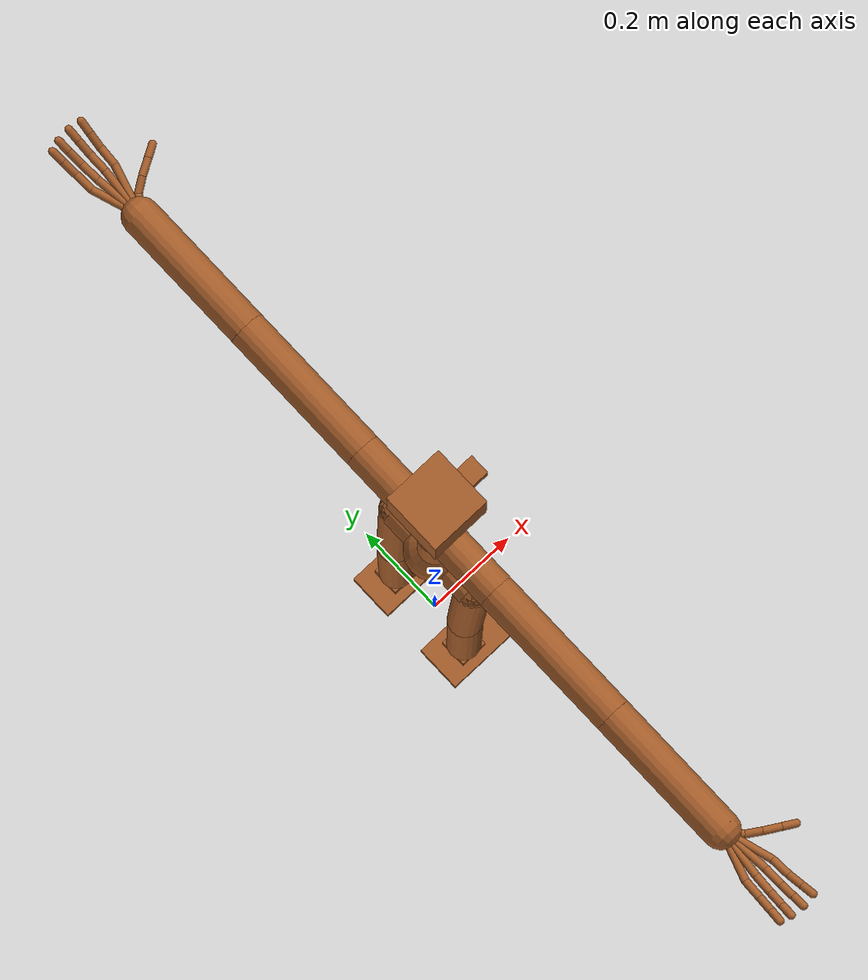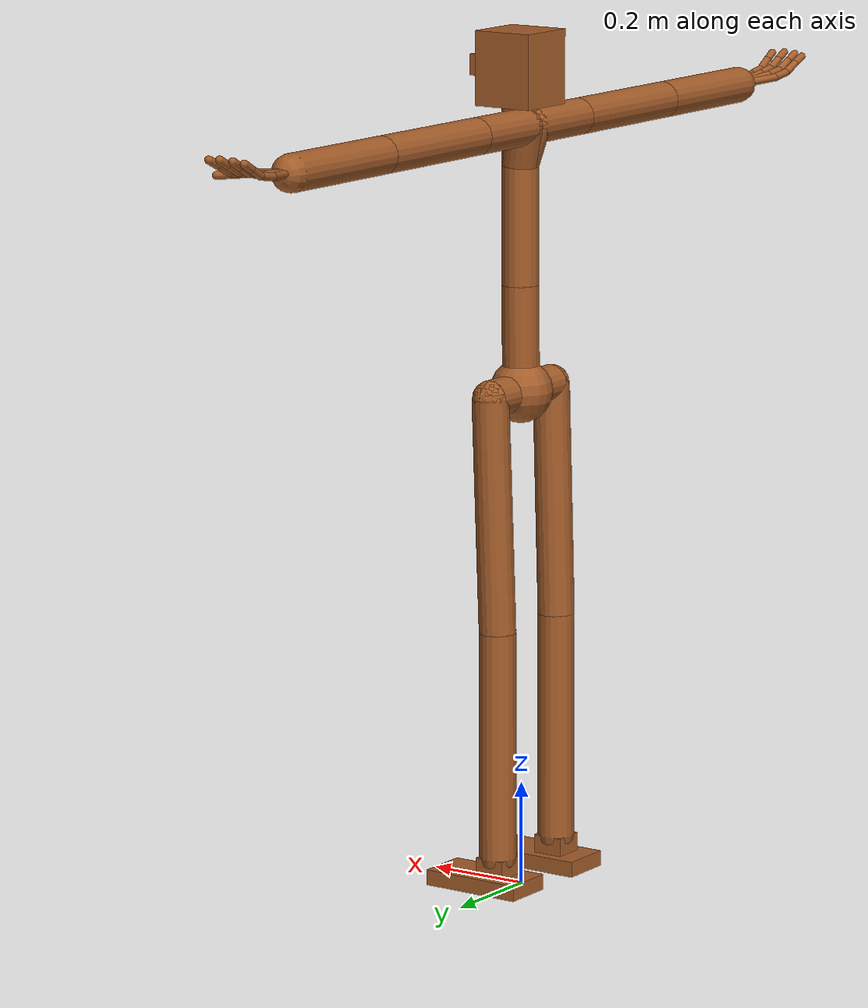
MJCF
<mujoco model="common-rig-h">
    <!--
            Robot Intelligence Lab
            Common Rig (Custom Humanoid) model

            @ Contact us : taemoon-jeong (motor_moon94@korea.ac.kr)
    -->
    <compiler coordinate="local" inertiafromgeom="true" angle="radian"/>

    <default>
        <joint limited="true" damping="1" armature="0"/>
        <geom contype="1" condim="3" margin="0.001" solref=".02 1" solimp=".8 .8 .01" material="matgeom"/>
        <motor ctrlrange="-.4 .4" ctrllimited="true"/>

        <default class="hand">
        	<joint limited="true"/>
            <position ctrllimited="true" kp="1"/>
		</default>
    </default>

    <option timestep="0.005" iterations="50" tolerance="1e-10" solver="Newton" jacobian="dense" cone="pyramidal"/>
    <size nconmax="50" njmax="200" nstack="10000"/>

    <visual>
        <map force="0.1" zfar="30"/>
        <rgba haze="0.15 0.25 0.35 1"/>
        <quality shadowsize="2048"/>
        <global offwidth="800" offheight="800"/>
    </visual>

    <asset>
        <texture name="texgeom" type="cube" builtin="flat" mark="cross" width="127" height="1278"
            rgb1="0.8 0.6 0.4" rgb2="0.8 0.6 0.4" markrgb="1 1 1" random="0.01"/>
        <material name="matgeom" texture="texgeom" texuniform="true" rgba="0.8 0.6 0.4 1.0"/>
    </asset>

    <worldbody>

        <body name="base" pos="0 0 0.960348">
            <freejoint name="base"/>
            <geom name="base" type="sphere" pos="0 0 0" size="0.06"/>
            <body name="torso" pos="0 0 0" euler="0 0 0">
                <geom name="root2spine" type="capsule" fromto="0 0 0 0.00194939 0 0.2017038"  size="0.035" density="2226"/>
                <joint name="root1" type="hinge" pos="0 0 0" axis="1 0 0" range="-0.872222 0.872222" damping="60" stiffness="600" armature="0.02" />
                <joint name="root2" type="hinge" pos="0 0 0" axis="0 1 0" range="-0.523333 2.616667" damping="60" stiffness="600" armature="0.02" />
                <joint name="root3" type="hinge" pos="0 0 0" axis="0 0 1" range="-1.395556 1.395556" damping="60" stiffness="600" armature="0.02" />
                <body name="spine" pos="0.00194939 0 0.2017038" euler="0 0 0">
                    <geom name="spine2neck" type="capsule" fromto="0 0 0 0 0 0.2263381"  size="0.035" density="2226"/>
                    <joint name="spine" type="hinge" pos="0 0 0" axis="0 1 0" range="-0.436111 0.785" damping="60" stiffness="600" armature="0.02" />
                    <joint name="spinex" type="hinge" pos="0 0 0" axis="1 0 0" range="-0.436111 0.785" damping="60" stiffness="600" armature="0.02"/>
                    <joint name="spinez" type="hinge" pos="0 0 0" axis="0 0 1" range="-0.436111 0.785" damping="60" stiffness="600" armature="0.02"/>
                    <body name="neck" pos="0 0 0.2263381" euler="0 0 0">
                        <geom name="neck2rclavicle" type="capsule" fromto="0 0 0 -0.0182683 -0.0119726 0.0730251"  size="0.035"/>
                        <geom name="neck2lclavicle" type="capsule" fromto="0 0 0 -0.0182683 0.0119726 0.0730251"  size="0.035"/>
                        <geom name="neck2head" type="capsule" fromto="0 0 0 0 0 0.1817364"  size="0.035"/>
                        <body name="right_clavicle" pos="-0.0182683 -0.0119726 0.0730251" euler="0 0 0">
                            <geom name="rclavicle2rshoulder" type="capsule" fromto="0 0 0 0 -0.155151 0"  size="0.035"/>
                            <joint name="rc" type="hinge" pos="0 0 0" axis="1 0 0" range="-0.261793 0.261793" damping="60" stiffness="600" armature="0.02"/>
                            <body name="right_shoulder" pos="0 -0.155151 0" euler="0 0 0">
                                <geom name="rshoulder2relbow" type="capsule" fromto="0 0 0 0 -0.291422 0"  size="0.035"/>
                                <joint name="rs1" type="hinge" pos="0 0 0" axis="1 0 0" range="-2.006111 2.006111" stiffness="200" damping="20" armature="0.0068" />
                                <joint name="rs2" type="hinge" pos="0 0 0" axis="0 0 1" range="-1.570796 3.141592" stiffness="200" damping="20" armature="0.0051" />
                                <joint name="rs3" type="hinge" pos="0 0 0" axis="0 1 0" range="-3.141592 3.141592" stiffness="200" damping="20" armature="0.0051"/>
                                <body name="right_elbow" pos="0 -0.291422 0" euler="0 0 0">
                                    <geom name="relbow2rwrist" type="capsule" fromto="0 0 0 0 -0.270311 0"  size="0.035"/>
                                    <joint name="re" type="hinge" pos="0 0 0" axis="0 0 1" range="0.01 2.61666666667" stiffness="150" damping="15" armature="0.0028"/>
                                    <body name="right_wrist" pos="0 -0.270311 0" euler="0 0 0">
                                        <joint name="rw1" type="hinge" pos="0 0 0" axis="0 1 0" range="-1.570796 1.570796" damping="5" stiffness="50" armature="0.02"/>
                                        <joint name="rw2" type="hinge" pos="0 0 0" axis="0 0 1" range="-1.570796 1.570796" damping="5" stiffness="50" armature="0.02"/>
                                        <joint name="rw3" type="hinge" pos="0 0 0" axis="1 0 0" range="-1.570796 1.570796" damping="5" stiffness="50" armature="0.02"/>
                                            <geom name="rwrist2rtbase" type="capsule" fromto="0 0 0 0 -0.00001 0" size="0.0075"/>
                                            <body name="rtbase" pos="0 -0.00001 0" euler="0 0 0">
                                            <joint name="rthumb" type="hinge" pos="0 0 0" axis="0 0 1" range="-0.392699 0.392699" damping="5" stiffness="50" armature="0.02"/>
                                                <geom name="rtbase2rthumb" type="capsule" fromto="0 0 0 0.024048 -0.032330 -0.003781" size="0.0075"/>
                                                <body name="rthumb_l1" pos="0.024048 -0.032330 -0.003781" euler="0 0 0">
                                                    <geom name="rthumb_l12" type="capsule" fromto="0 0 0 0.025917 -0.017108 0.005257" size="0.0075"/>
                                                    <joint name="rthumb_q1" type="hinge" pos="0 0 0" axis="0 1 0" range="0.01 1.570796" damping="5" stiffness="50" armature="0.02"/>
                                                        <body name="rthumb_l2" pos="0.025917 -0.017108 0.005257" euler="0 0 0">
                                                            <geom name="rthumb_l23" type="capsule" fromto="0 0 0 0.029296 -0.017082 -0.002240" size="0.0075"/>
                                                            <joint name="rthumb_q2" type="hinge" pos="0 0 0" axis="0 0 1" range="-3.141592 -0.01" damping="5" stiffness="50" armature="0.02"/>
                                                                <body name="rthumb_l3" pos="0.029296 -0.017082 -0.002240" euler="0 0 0">
                                                                    <geom name="rthumb_l3end" type="capsule" fromto="0 0 0 0.021972 -0.012812 -0.001680" size="0.0075"/>
                                                                    <joint name="rthumb_q3" type="hinge" pos="0 0 0" axis="0 0 1" range="-3.141592 -0.01" damping="5" stiffness="50" armature="0.02"/>
                                                                        <body name="rthumb_end" pos="0.021972 -0.012812 -0.001680" euler="0 0 0"/>
                                                                </body>
                                                        </body>
                                                </body>
                                            </body>
                                            <geom name="rwrist2ribase" type="capsule" fromto="0 0 0 0 -0.00001 0" size="0.0075"/>
                                            <body name="ribase" pos="0 -0.00001 0" euler="0 0 0">
                                            <joint name="rindex" type="hinge" pos="0 0 0" axis="0 0 1" range="-0.392699 0.392699" damping="5" stiffness="50" armature="0.02"/>
                                                <geom name="ribase2rindex" type="capsule" fromto="0 0 0 0.02792 -0.09587 0.009270" size="0.0075"/>
                                                <body name="rindex_l1" pos="0.02792 -0.09587 0.009270" euler="0 0 0">
                                                    <geom name="rindex_l12" type="capsule" fromto="0 0 0 0.001741 -0.038053 0.006304" size="0.0075"/>
                                                    <joint name="rindex_q1" type="hinge" pos="0 0 0" axis="1 0 0" range="0.01 3.141592" damping="5" stiffness="50" armature="0.02"/>
                                                        <body name="rindex_l2" pos="0.001741 -0.038053 0.006304" euler="0 0 0">
                                                            <geom name="rindex_l23" type="capsule" fromto="0 0 0 0.002766 -0.029346 0.015357" size="0.0075"/>
                                                            <joint name="rindex_q2" type="hinge" pos="0 0 0" axis="1 0 0" range="0.01 3.141592" damping="5" stiffness="50" armature="0.02"/>
                                                                <body name="rindex_l3" pos="0.002766 -0.029346 0.015357" euler="0 0 0">
                                                                    <geom name="rindex_l3end" type="capsule" fromto="0 0 0 0.002075 -0.022010 0.011517" size="0.0075"/>
                                                                    <joint name="rindex_q3" type="hinge" pos="0 0 0" axis="1 0 0" range="0.01 3.141592" damping="5" stiffness="50" armature="0.02"/>
                                                                        <body name="rindex_end" pos="0.002075 -0.022010 0.011517" euler="0 0 0"/>
                                                                </body>
                                                        </body>
                                                </body>
                                            </body>
                                            <geom name="rwrist2rmbase" type="capsule" fromto="0 0 0 0 -0.00001 0" size="0.0075"/>
                                            <body name="rmbase" pos="0 -0.00001 0" euler="0 0 0">
                                            <joint name="rmiddle" type="hinge" pos="0 0 0" axis="0 0 1" range="-0.392699 0.392699" damping="5" stiffness="50" armature="0.02"/>
                                                <geom name="rmbase2rmiddle" type="capsule" fromto="0 0 0 0.008417 -0.09906 0.01151" size="0.0075"/>
                                                <body name="rmiddle_l1" pos="0.008417 -0.09906 0.01151" euler="0 0 0">
                                                    <geom name="rmiddle_l12" type="capsule" fromto="0 0 0 -0.000267 -0.038091 0.006303" size="0.0075"/>
                                                    <joint name="rmiddle_q1" type="hinge" pos="0 0 0" axis="1 0 0" range="0.01 3.141592" damping="5" stiffness="50" armature="0.02"/>
                                                        <body name="rmiddle_l2" pos="-0.000267 -0.038091 0.006303" euler="0 0 0">
                                                            <geom name="rmiddle_l23" type="capsule" fromto="0 0 0 0.000396 -0.029433 0.015435" size="0.0075"/>
                                                            <joint name="rmiddle_q2" type="hinge" pos="0 0 0" axis="1 0 0" range="0.01 3.141592" damping="5" stiffness="50" armature="0.02"/>
                                                                <body name="rmiddle_l3" pos="0.000396 -0.029433 0.015435" euler="0 0 0">
                                                                    <geom name="rmiddle_l3end" type="capsule" fromto="0 0 0 0.000297 -0.022074 0.011576" size="0.0075"/>
                                                                    <joint name="rmiddle_q3" type="hinge" pos="0 0 0" axis="1 0 0" range="0.01 3.141592" damping="5" stiffness="50" armature="0.02"/>
                                                                        <body name="rmiddle_end" pos="0.000297 -0.022074 0.011576" euler="0 0 0"/>
                                                                </body>
                                                        </body>
                                                </body>
                                            </body>
                                            <geom name="rwrist2rrbase" type="capsule" fromto="0 0 0 0 -0.00001 0" size="0.0075"/>
                                            <body name="rrbase" pos="0 -0.00001 0" euler="0 0 0">
                                            <joint name="rring" type="hinge" pos="0 0 0" axis="0 0 1" range="-0.392699 0.392699" damping="5" stiffness="50" armature="0.02"/>
                                                <geom name="rmbase2rring" type="capsule" fromto="0 0 0 -0.01175 -0.09670 0.01039" size="0.0075"/>
                                                <body name="rring_l1" pos="-0.01175 -0.09670 0.01039" euler="0 0 0">
                                                    <geom name="rring_l12" type="capsule" fromto="0 0 0 -0.002238 -0.038029 0.006287" size="0.0075"/>
                                                    <joint name="rring_q1" type="hinge" pos="0 0 0" axis="1 0 0" range="0.01 3.141592" damping="5" stiffness="50" armature="0.02"/>
                                                        <body name="rring_l2" pos="-0.002238 -0.038029 0.006287" euler="0 0 0">
                                                            <geom name="rring_l23" type="capsule" fromto="0 0 0 -0.001986 -0.029367 0.015437" size="0.0075"/>
                                                            <joint name="rring_q2" type="hinge" pos="0 0 0" axis="1 0 0" range="0.01 3.141592" damping="5" stiffness="50" armature="0.02"/>
                                                                <body name="rring_l3" pos="-0.001986 -0.029367 0.015437" euler="0 0 0">
                                                                    <geom name="rring_l3end" type="capsule" fromto="0 0 0 -0.001489 -0.022026 0.011577" size="0.0075"/>
                                                                    <joint name="rring_q3" type="hinge" pos="0 0 0" axis="1 0 0" range="0.01 3.141592" damping="5" stiffness="50" armature="0.02"/>
                                                                        <body name="rring_end" pos="-0.001489 -0.022026 0.011577" euler="0 0 0"/>
                                                                </body>
                                                        </body>
                                                </body>
                                            </body>
                                            <geom name="rwrist2rpbase" type="capsule" fromto="0 0 0 0 -0.00001 0" size="0.0075"/>
                                            <body name="rpbase" pos="0 -0.00001 0" euler="0 0 0">
                                            <joint name="rpinky" type="hinge" pos="0 0 0" axis="0 0 1" range="-0.392699 0.392699" damping="5" stiffness="50" armature="0.02"/>
                                                <geom name="rmbase2rpinky" type="capsule" fromto="0 0 0 -0.03086 -0.09073 0.007162" size="0.0075"/>
                                                <body name="rpinky_l1" pos="-0.03086 -0.09073 0.007162" euler="0 0 0">
                                                    <geom name="rpinky_l12" type="capsule" fromto="0 0 0 -0.002194 -0.038032 0.006289" size="0.0075 "/>
                                                    <joint name="rpinky_q1" type="hinge" pos="0 0 0" axis="1 0 0" range="0.01 3.141592" damping="5" stiffness="50" armature="0.02"/>
                                                        <body name="rpinky_l2" pos="-0.002194 -0.038032 0.006289" euler="0 0 0">
                                                            <geom name="rpinky_l23" type="capsule" fromto="0 0 0 -0.002632 -0.029336 0.015400" size="0.0075"/>
                                                            <joint name="rpinky_q2" type="hinge" pos="0 0 0" axis="1 0 0" range="0.01 3.141592" damping="5" stiffness="50" armature="0.02"/>
                                                                <body name="rpinky_l3" pos="-0.002632 -0.029336 0.015400" euler="0 0 0">
                                                                    <geom name="rpinky_l3end" type="capsule" fromto="0 0 0 -0.001974 -0.022002 0.011550" size="0.0075"/>
                                                                    <joint name="rpinky_q3" type="hinge" pos="0 0 0" axis="1 0 0" range="0.01 3.141592" damping="5" stiffness="50" armature="0.02"/>
                                                                        <body name="rpinky_end" pos="-0.001974 -0.022002 0.011550" euler="0 0 0"/>
                                                                </body>
                                                        </body>
                                                </body>
                                            </body>
                                    </body>
                                </body>
                            </body>
                        </body>
                        <body name="left_clavicle" pos="-0.0182683 0.0119726 0.0730251" euler="0 0 0">
                            <geom name="lclavicle2lshoulder" type="capsule" fromto="0 0 0 0 0.155151 0"  size="0.035"/>
                            <joint name="lc" type="hinge" pos="0 0 0" axis="1 0 0" range="-0.261793 0.261793" damping="60" stiffness="600" armature="0.02"/>
                            <body name="left_shoulder" pos="0 0.155151 0" euler="0 0 0">
                                <geom name="lshoulder2lelbow" type="capsule" fromto="0 0 0 0 0.291422 0"  size="0.035" />
                                <joint name="ls1" type="hinge" pos="0 0 0" axis="1 0 0" range="-2.006111 2.006111" stiffness="200" damping="20" armature="0.0068" />
                                <joint name="ls2" type="hinge" pos="0 0 0" axis="0 0 1" range="-3.141592 1.570796" stiffness="200" damping="20" armature="0.0051" />
                                <joint name="ls3" type="hinge" pos="0 0 0" axis="0 1 0" range="-3.141592 3.141592" stiffness="200" damping="20" armature="0.0051" />
                                <body name="left_elbow" pos="0 0.291422 0" euler="0 0 0">
                                    <geom name="lelbow2lwrist" type="capsule" fromto="0 0 0 0 0.270311 0"  size="0.035" />
                                    <joint name="le" type="hinge" pos="0 0 0" axis="0 0 1" range="-2.61666666667 -0.01" stiffness="150" damping="15" armature="0.0028" />
                                    <body name="left_wrist" pos="0 0.270311 0" euler="0 0 0">
                                        <joint name="lw1" type="hinge" pos="0 0 0" axis="0 1 0" range="-1.570796 1.570796" damping="5" stiffness="50" armature="0.02" />
                                        <joint name="lw2" type="hinge" pos="0 0 0" axis="0 0 1" range="-1.570796 1.570796" damping="5" stiffness="50" armature="0.02" />
                                        <joint name="lw3" type="hinge" pos="0 0 0" axis="1 0 0" range="-1.570796 1.570796" damping="5" stiffness="50" armature="0.02" />
                                            <geom name="lwrist2ltbase" type="capsule" fromto="0 0 0 0 0.00001 0" size="0.0075"/>
                                            <body name="ltbase" pos="0 0.00001 0" euler="0 0 0">
                                            <joint name="lthumb" type="hinge" pos="0 0 0" axis="0 0 1" range="-0.392699 0.392699" damping="5" stiffness="50" armature="0.02"/>
                                                <geom name="ltbase2lthumb" type="capsule" fromto="0 0 0 0.024048 0.032330 -0.003781" size="0.0075"/>
                                                <body name="lthumb_l1" pos="0.024048 0.032330 -0.003781" euler="0 0 0">
                                                    <geom name="lthumb_l12" type="capsule" fromto="0 0 0 0.025917 0.017108 0.005257" size="0.0075"/>
                                                    <joint name="lthumb_q1" type="hinge" pos="0 0 0" axis="0 1 0" range="0.01 1.570796" damping="5" stiffness="50" armature="0.02"/>
                                                        <body name="lthumb_l2" pos="0.025917 0.017108 0.005257" euler="0 0 0">
                                                            <geom name="lthumb_l23" type="capsule" fromto="0 0 0 0.029296 0.017082 -0.002240" size="0.0075"/>
                                                            <joint name="lthumb_q2" type="hinge" pos="0 0 0" axis="0 0 1" range="0.01 3.141592" damping="5" stiffness="50" armature="0.02"/>
                                                                <body name="lthumb_l3" pos="0.029296 0.017082 -0.002240" euler="0 0 0">
                                                                    <geom name="lthumb_l3end" type="capsule" fromto="0 0 0 0.021972 0.012812 -0.001680" size="0.0075"/>
                                                                    <joint name="lthumb_q3" type="hinge" pos="0 0 0" axis="0 0 1" range="0.01 3.141592" damping="5" stiffness="50" armature="0.02"/>
                                                                        <body name="lthumb_end" pos="0.021972 0.012812 -0.001680" euler="0 0 0"/>
                                                                </body>
                                                        </body>
                                                </body>
                                            </body>
                                            <geom name="lwrist2libase" type="capsule" fromto="0 0 0 0 0.00001 0" size="0.0075"/>
                                            <body name="libase" pos="0 0.00001 0" euler="0 0 0">
                                            <joint name="lindex" type="hinge" pos="0 0 0" axis="0 0 1" range="-0.392699 0.392699" damping="5" stiffness="50" armature="0.02"/>
                                                <geom name="libase2lindex" type="capsule" fromto="0 0 0 0.02792 0.09587 0.009270" size="0.0075"/>
                                                <body name="lindex_l1" pos="0.02792 0.09587 0.009270" euler="0 0 0">
                                                    <geom name="lindex_l12" type="capsule" fromto="0 0 0 0.001741 0.038053 0.006304" size="0.0075"/>
                                                    <joint name="lindex_q1" type="hinge" pos="0 0 0" axis="1 0 0" range="-3.141592 -0.01" damping="5" stiffness="50" armature="0.02"/>
                                                        <body name="lindex_l2" pos="0.001741 0.038053 0.006304" euler="0 0 0">
                                                            <geom name="lindex_l23" type="capsule" fromto="0 0 0 0.002766 0.029346 0.015357" size="0.0075"/>
                                                            <joint name="lindex_q2" type="hinge" pos="0 0 0" axis="1 0 0" range="-3.141592 -0.01" damping="5" stiffness="50" armature="0.02"/>
                                                                <body name="lindex_l3" pos="0.002766 0.029346 0.015357" euler="0 0 0">
                                                                    <geom name="lindex_l3end" type="capsule" fromto="0 0 0 0.002075 0.022010 0.011517" size="0.0075"/>
                                                                    <joint name="lindex_q3" type="hinge" pos="0 0 0" axis="1 0 0" range="-3.141592 -0.01" damping="5" stiffness="50" armature="0.02"/>
                                                                        <body name="lindex_end" pos="0.002075 0.022010 0.011517" euler="0 0 0"/>
                                                                </body>
                                                        </body>
                                                </body>
                                            </body>
                                            <geom name="lwrist2lmbase" type="capsule" fromto="0 0 0 0 0.00001 0" size="0.0075"/>
                                            <body name="lmbase" pos="0 0.00001 0" euler="0 0 0">
                                            <joint name="lmiddle" type="hinge" pos="0 0 0" axis="0 0 1" range="-0.392699 0.392699" damping="5" stiffness="50" armature="0.02"/>
                                                <geom name="lmbase2lmiddle" type="capsule" fromto="0 0 0 0.008417 0.09906 0.01151" size="0.0075"/>
                                                <body name="lmiddle_l1" pos="0.008417 0.09906 0.01151" euler="0 0 0">
                                                    <geom name="lmiddle_l12" type="capsule" fromto="0 0 0 -0.000267 0.038091 0.006303" size="0.0075"/>
                                                    <joint name="lmiddle_q1" type="hinge" pos="0 0 0" axis="1 0 0" range="-3.141592 -0.01" damping="5" stiffness="50" armature="0.02"/>
                                                        <body name="lmiddle_l2" pos="-0.000267 0.038091 0.006303" euler="0 0 0">
                                                            <geom name="lmiddle_l23" type="capsule" fromto="0 0 0 0.000396 0.029433 0.015435" size="0.0075"/>
                                                            <joint name="lmiddle_q2" type="hinge" pos="0 0 0" axis="1 0 0" range="-3.141592 -0.01" damping="5" stiffness="50" armature="0.02"/>
                                                                <body name="lmiddle_l3" pos="0.000396 0.029433 0.015435" euler="0 0 0">
                                                                    <geom name="lmiddle_l3end" type="capsule" fromto="0 0 0 0.000297 0.022074 0.011576" size="0.0075"/>
                                                                    <joint name="lmiddle_q3" type="hinge" pos="0 0 0" axis="1 0 0" range="-3.141592 -0.01" damping="5" stiffness="50" armature="0.02"/>
                                                                        <body name="lmiddle_end" pos="0.000297 0.022074 0.011576" euler="0 0 0"/>
                                                                </body>
                                                        </body>
                                                </body>
                                            </body>
                                            <geom name="lwrist2lrbase" type="capsule" fromto="0 0 0 0 0.00001 0" size="0.0075"/>
                                            <body name="lrbase" pos="0 0.00001 0" euler="0 0 0">
                                            <joint name="lring" type="hinge" pos="0 0 0" axis="0 0 1" range="-0.392699 0.392699" damping="5" stiffness="50" armature="0.02"/>
                                                <geom name="lrbase2lring" type="capsule" fromto="0 0 0 -0.01175 0.09670 0.01039" size="0.0075"/>
                                                <body name="lring_l1" pos="-0.01175 0.09670 0.01039" euler="0 0 0">
                                                    <geom name="lring_l12" type="capsule" fromto="0 0 0 -0.002238 0.038029 0.006287" size="0.0075"/>
                                                    <joint name="lring_q1" type="hinge" pos="0 0 0" axis="1 0 0" range="-3.141592 -0.01" damping="5" stiffness="50" armature="0.02"/>
                                                        <body name="lring_l2" pos="-0.002238 0.038029 0.006287" euler="0 0 0">
                                                            <geom name="lring_l23" type="capsule" fromto="0 0 0 -0.001986 0.029367 0.015437" size="0.0075"/>
                                                            <joint name="lring_q2" type="hinge" pos="0 0 0" axis="1 0 0" range="-3.141592 -0.01" damping="5" stiffness="50" armature="0.02"/>
                                                                <body name="lring_l3" pos="-0.001986 0.029367 0.015437" euler="0 0 0">
                                                                    <geom name="lring_l3end" type="capsule" fromto="0 0 0 -0.001489 0.022026 0.011577" size="0.0075"/>
                                                                    <joint name="lring_q3" type="hinge" pos="0 0 0" axis="1 0 0" range="-3.141592 -0.01" damping="5" stiffness="50" armature="0.02"/>
                                                                        <body name="lring_end" pos="-0.001489 0.022026 0.011577" euler="0 0 0"/>
                                                                </body>
                                                        </body>
                                                </body>
                                            </body>
                                            <geom name="lwrist2lpbase" type="capsule" fromto="0 0 0 0 0.00001 0" size="0.0075"/>
                                            <body name="lpbase" pos="0 0.00001 0" euler="0 0 0">
                                            <joint name="lpinky" type="hinge" pos="0 0 0" axis="0 0 1" range="-0.392699 0.392699" damping="5" stiffness="50" armature="0.02"/>
                                                <geom name="lpbase2lpinky" type="capsule" fromto="0 0 0 -0.03086 0.09073 0.007162" size="0.0075"/>
                                                <body name="lpinky_l1" pos="-0.03086 0.09073 0.007162" euler="0 0 0">
                                                    <geom name="lpinky_l12" type="capsule" fromto="0 0 0 -0.002194 0.038032 0.006289" size="0.0075"/>
                                                    <joint name="lpinky_q1" type="hinge" pos="0 0 0" axis="1 0 0" range="-3.141592 -0.01" damping="5" stiffness="50" armature="0.02"/>
                                                        <body name="lpinky_l2" pos="-0.002194 0.038032 0.006289" euler="0 0 0">
                                                            <geom name="lpinky_l23" type="capsule" fromto="0 0 0 -0.002632 0.029336 0.015400" size="0.0075"/>
                                                            <joint name="lpinky_q2" type="hinge" pos="0 0 0" axis="1 0 0" range="-3.141592 -0.01" damping="5" stiffness="50" armature="0.02"/>
                                                                <body name="lpinky_l3" pos="-0.002632 0.029336 0.015400" euler="0 0 0">
                                                                    <geom name="lpinky_l3end" type="capsule" fromto="0 0 0 -0.001974 0.022002 0.011550" size="0.0075"/>
                                                                    <joint name="lpinky_q3" type="hinge" pos="0 0 0" axis="1 0 0" range="-3.141592 -0.01" damping="5" stiffness="50" armature="0.02"/>
                                                                        <body name="lpinky_end" pos="-0.001974 0.022002 0.011550" euler="0 0 0"/>
                                                                </body>
                                                        </body>
                                                </body>
                                            </body>
                                    </body>
                                </body>
                            </body>
                        </body>
                        <body name="head" pos="0 0 0.1817364" euler="0 0 0">
                            <geom name="head" type="box" pos="0 0 0" size="0.06 0.06 0.07" />
                            <geom name="nose" type="box" pos="0.05 0 0" size="0.05 0.02 0.02" />
                            <joint name="head1" type="hinge" pos="0 0 0" axis="1 0 0" range="-1.57 1.57" damping="5" stiffness="50" armature="0.02" />
                            <joint name="head2" type="hinge" pos="0 0 0" axis="0 1 0" range="-1.57 1.57" damping="5" stiffness="50" armature="0.02" />
                            <joint name="head3" type="hinge" pos="0 0 0" axis="0 0 1" range="-1.57 1.57" damping="5" stiffness="50" armature="0.02" />
                        </body>
                    </body>
                </body>
            </body>
            <body name="right_leg" pos="0 0 0" euler="0 0 0">
                <geom name="base2rpelvis" type="capsule" fromto="0 0 0 0 -0.100371 0"  size="0.035" />
                <body name="right_pelvis" pos="0 -0.100371 0" euler="0 0 0">
                    <geom name="rpelvis2rknee" type="capsule" fromto="0 0 0 -0.013579 0.00242305 -0.445198"  size="0.035" />
                    <joint name="rp1" type="hinge" pos="0 0 0" axis="1 0 0" range="-1.57 0.785" damping="30" stiffness="900" armature="0.01" />
                    <joint name="rp2" type="hinge" pos="0 0 0" axis="0 1 0" range="-3.141592 2.267778" damping="30" stiffness="900" armature="0.01" />
                    <joint name="rp3" type="hinge" pos="0 0 0" axis="0 0 1" range="-0.52333333333 0.52333333333" damping="30" stiffness="900" armature="0.01" />
                    <body name="right_knee" pos="-0.013579 0.00242305 -0.445198" euler="0 0 0">
                        <geom name="rknee2rankle" type="capsule" fromto="0 0 0 0 0 -0.436307"  size="0.035" />
                        <joint name="rk" type="hinge" pos="0 0 0" axis="0 1 0" range="0.0175 2.0944" damping="30" stiffness="900" armature="0.0060" />
                        <body name="right_ankle" pos="0 0 -0.436307" euler="0 0 0">
                            <geom name="rankle" type="box" pos="0 0 -0.025" size="0.03 0.03 0.025" />
                            <geom name="rfoot" type="box" pos="0.03 0 -0.05" size="0.1 0.05 0.015" />
                            <joint name="ra1" type="hinge" pos="0 0 0" axis="0 1 0" range="-1.57 0.697778" stiffness="600" damping="20" armature="0.0008" />
                            <joint name="ra2" type="hinge" pos="0 0 0" axis="1 0 0" range="-0.261667 0.261667" stiffness="600" damping="20" armature="0.0006" />
                            <joint name="ra3" type="hinge" pos="0 0 0" axis="0 0 1" range="-0.52333333333 0.52333333333" stiffness="600" damping="20" armature="0.0006" />
                        </body>
                    </body>
                </body>
            </body>
            <body name="left_leg" pos="0 0 0" euler="0 0 0">
                <geom name="base2lpelvis" type="capsule" fromto="0 0 0 0 0.100371 0"  size="0.035" />
                <body name="left_pelvis" pos="0 0.100371 0" euler="0 0 0">
                    <geom name="lpelvis2lknee" type="capsule" fromto="0 0 0 -0.013579 -0.00242347 -0.445198"  size="0.035" />
                    <joint name="lp1" type="hinge" pos="0 0 0" axis="1 0 0" range="-0.785 1.57" damping="30" stiffness="900" armature="0.01" />
                    <joint name="lp2" type="hinge" pos="0 0 0" axis="0 1 0" range="-3.141592 2.267778" damping="30" stiffness="900" armature="0.01" />
                    <joint name="lp3" type="hinge" pos="0 0 0" axis="0 0 1" range="-0.52333333333 0.52333333333" damping="30" stiffness="900" armature="0.01" />
                    <body name="left_knee" pos="-0.013579 -0.00242347 -0.445198" euler="0 0 0">
                        <geom name="lknee2lankle" type="capsule" fromto="0 0 0 0 0 -0.436307"  size="0.035" />
                        <joint name="lk" type="hinge" pos="0 0 0" axis="0 1 0" range="0.0175 2.0944" damping="30" stiffness="900" armature="0.0060" />
                        <body name="left_ankle" pos="0 0 -0.436307" euler="0 0 0">
                            <geom name="lankle" type="box" pos="0 0 -0.025" size="0.03 0.03 0.025" />
                            <geom name="lfoot" type="box" pos="0.03 0 -0.05" size="0.1 0.05 0.015" />
                            <joint name="la1" type="hinge" pos="0 0 0" axis="0 1 0" range="-1.57 0.697778" stiffness="600" damping="20" armature="0.0008" />
                            <joint name="la2" type="hinge" pos="0 0 0" axis="1 0 0" range="-0.261667 0.261667" stiffness="600" damping="20" armature="0.0006" />
                            <joint name="la3" type="hinge" pos="0 0 0" axis="0 0 1" range="-0.52333333333 0.52333333333" stiffness="600" damping="20" armature="0.0006" />
                        </body>
                    </body>
                </body>
            </body>
        </body>
    </worldbody>

    <actuator>
        <motor name="root1"       gear="200" joint="root1" />
        <motor name="root2"       gear="200" joint="root2" />
        <motor name="root3"       gear="200" joint="root3" />
        <motor name="spine"       gear="200" joint="spine" />
        <motor name="rs1"         gear="100" joint="rs1" />
        <motor name="rs2"         gear="100" joint="rs2" />
        <motor name="rs3"         gear="100" joint="rs3" />
        <motor name="re"          gear="200" joint="re" />
        <motor name="rw1"         gear="100" joint="rw1" />
        <motor name="rw2"         gear="100" joint="rw2" />
        <motor name="rw3"         gear="100" joint="rw3" />
        <motor name="ls1"         gear="100" joint="ls1" />
        <motor name="ls2"         gear="100" joint="ls2" />
        <motor name="ls3"         gear="100" joint="ls3" />
        <motor name="le"          gear="200" joint="le" />
        <motor name="lw1"         gear="100" joint="lw1" />
        <motor name="lw2"         gear="100" joint="lw2" />
        <motor name="lw3"         gear="100" joint="lw3" />
        <motor name="rp1"         gear="600" joint="rp1" />
        <motor name="rp2"         gear="200" joint="rp2" />
        <motor name="rp3"         gear="200" joint="rp3" />
        <motor name="rk"          gear="400" joint="rk" />
        <motor name="ra1"         gear="100" joint="ra1" />
        <motor name="ra2"         gear="100" joint="ra2" />
        <motor name="ra3"         gear="100" joint="ra3" />
        <motor name="lp1"         gear="600" joint="lp1" />
        <motor name="lp2"         gear="200" joint="lp2" />
        <motor name="lp3"         gear="200" joint="lp3" />
        <motor name="lk"          gear="400" joint="lk" />
        <motor name="la1"         gear="100" joint="la1" />
        <motor name="la2"         gear="100" joint="la2" />
        <motor name="la3"         gear="100" joint="la3" />
        <motor name="head1"       gear="200" joint="head1" />
        <motor name="head2"       gear="200" joint="head2" />
        <motor name="head3"       gear="200" joint="head3" />

        <motor name="rc"         gear="100" joint="rc" />
        <motor name="lc"         gear="100" joint="lc" />

        <!-- right hand -->
        <position name="rthumb"     class="hand"  joint="rthumb"     ctrlrange="-22.5 22.5"/>
        <position name="rthumb_q1"  class="hand"  joint="rthumb_q1"  ctrlrange="0 180"/>
        <position name="rthumb_q2"  class="hand"  joint="rthumb_q2"  ctrlrange="0 180"/>
        <position name="rthumb_q3"  class="hand"  joint="rthumb_q3"  ctrlrange="0 180"/>
        <position name="rindex"     class="hand"  joint="rindex"     ctrlrange="-22.5 22.5"/>
        <position name="rindex_q1"  class="hand"  joint="rindex_q1"  ctrlrange="0 360"/>
        <position name="rindex_q2"  class="hand"  joint="rindex_q2"  ctrlrange="0 360"/>
        <position name="rindex_q3"  class="hand"  joint="rindex_q3"  ctrlrange="0 360"/>
        <position name="rmiddle"    class="hand"  joint="rmiddle"   ctrlrange="-22.5 22.5"/>
        <position name="rmiddle_q1" class="hand"  joint="rmiddle_q1" ctrlrange="0 360"/>
        <position name="rmiddle_q2" class="hand"  joint="rmiddle_q2" ctrlrange="0 360"/>
        <position name="rmiddle_q3" class="hand"  joint="rmiddle_q3" ctrlrange="0 360"/>
        <position name="rring"      class="hand"  joint="rring"      ctrlrange="-22.5 22.5"/>
        <position name="rring_q1"   class="hand"  joint="rring_q1"   ctrlrange="0 360"/>
        <position name="rring_q2"   class="hand"  joint="rring_q2"   ctrlrange="0 360"/>
        <position name="rring_q3"   class="hand"  joint="rring_q3"   ctrlrange="0 360"/>
        <position name="rpinky"     class="hand"  joint="rpinky"     ctrlrange="-22.5 22.5"/>
        <position name="rpinky_q1"  class="hand"  joint="rpinky_q1"  ctrlrange="0 360"/>
        <position name="rpinky_q2"  class="hand"  joint="rpinky_q2"  ctrlrange="0 360"/>
        <position name="rpinky_q3"  class="hand"  joint="rpinky_q3"  ctrlrange="0 360"/>

        <!-- left hand -->
        <position name="lthumb"     class="hand"  joint="lthumb"     ctrlrange="-22.5 22.5"/>
        <position name="lthumb_q1"  class="hand"  joint="lthumb_q1"  ctrlrange="0 180"/>
        <position name="lthumb_q2"  class="hand"  joint="lthumb_q2"  ctrlrange="0 180"/>
        <position name="lthumb_q3"  class="hand"  joint="lthumb_q3"  ctrlrange="0 180"/>
        <position name="lindex"     class="hand"  joint="lindex"     ctrlrange="-22.5 22.5"/>
        <position name="lindex_q1"  class="hand"  joint="lindex_q1"  ctrlrange="0 360"/>
        <position name="lindex_q2"  class="hand"  joint="lindex_q2"  ctrlrange="0 360"/>
        <position name="lindex_q3"  class="hand"  joint="lindex_q3"  ctrlrange="0 360"/>
        <position name="lmiddle"    class="hand"  joint="lmiddle"   ctrlrange="-22.5 22.5"/>
        <position name="lmiddle_q1" class="hand"  joint="lmiddle_q1" ctrlrange="0 360"/>
        <position name="lmiddle_q2" class="hand"  joint="lmiddle_q2" ctrlrange="0 360"/>
        <position name="lmiddle_q3" class="hand"  joint="lmiddle_q3" ctrlrange="0 360"/>
        <position name="lring"      class="hand"  joint="lring"      ctrlrange="-22.5 22.5"/>
        <position name="lring_q1"   class="hand"  joint="lring_q1"   ctrlrange="0 360"/>
        <position name="lring_q2"   class="hand"  joint="lring_q2"   ctrlrange="0 360"/>
        <position name="lring_q3"   class="hand"  joint="lring_q3"   ctrlrange="0 360"/>
        <position name="lpinky"     class="hand"  joint="lpinky"     ctrlrange="-22.5 22.5"/>
        <position name="lpinky_q1"  class="hand"  joint="lpinky_q1"  ctrlrange="0 360"/>
        <position name="lpinky_q2"  class="hand"  joint="lpinky_q2"  ctrlrange="0 360"/>
        <position name="lpinky_q3"  class="hand"  joint="lpinky_q3"  ctrlrange="0 360"/>

    </actuator>

    <!-- exclude -->
    <contact>
        <exclude body1="neck" body2="right_shoulder"/>
        <exclude body1="spine" body2="right_shoulder"/>
        <exclude body1="right_shoulder" body2="right_elbow"/>
        <exclude body1="right_elbow" body2="right_wrist"/>

        <exclude body1="neck" body2="left_shoulder"/>
        <exclude body1="spine" body2="left_shoulder"/>
        <exclude body1="left_shoulder" body2="left_elbow"/>
        <exclude body1="left_elbow" body2="left_wrist"/>

        <exclude body1="neck" body2="spine"/>
        <exclude body1="spine" body2="torso"/>
        <exclude body1="torso" body2="base"/>

        <exclude body1="torso" body2="right_pelvis"/>
        <exclude body1="right_leg" body2="base"/>
        <exclude body1="right_leg" body2="torso"/>
        <exclude body1="right_leg" body2="right_pelvis"/>
        <exclude body1="right_pelvis" body2="right_knee"/>
        <exclude body1="right_knee" body2="right_ankle"/>

        <exclude body1="right_leg" body2="left_leg"/>

        <exclude body1="torso" body2="left_pelvis"/>
        <exclude body1="left_leg" body2="base"/>
        <exclude body1="left_leg" body2="torso"/>
        <exclude body1="left_leg" body2="left_pelvis"/>
        <exclude body1="left_pelvis" body2="left_knee"/>
        <exclude body1="left_knee" body2="left_ankle"/>

        <exclude body1="right_wrist" body2="rtbase"/>
        <exclude body1="right_wrist" body2="ribase"/>
        <exclude body1="right_wrist" body2="rmbase"/>
        <exclude body1="right_wrist" body2="rrbase"/>
        <exclude body1="right_wrist" body2="rpbase"/>
        <exclude body1="rtbase" body2="ribase"/>
        <exclude body1="rtbase" body2="rmbase"/>
        <exclude body1="rtbase" body2="rrbase"/>
        <exclude body1="rtbase" body2="rpbase"/>
        <exclude body1="ribase" body2="rmbase"/>
        <exclude body1="ribase" body2="rrbase"/>
        <exclude body1="ribase" body2="rpbase"/>
        <exclude body1="rmbase" body2="rrbase"/>
        <exclude body1="rmbase" body2="rpbase"/>
        <exclude body1="rrbase" body2="rpbase"/>

        <exclude body1="right_wrist" body2="rthumb_l1"/>
        <exclude body1="rthumb_l1" body2="rthumb_l2"/>
        <exclude body1="rthumb_l2" body2="rthumb_l3"/>
        <exclude body1="rthumb_l3" body2="rthumb_end"/>

        <exclude body1="rindex_l1" body2="rindex_l2"/>
        <exclude body1="rindex_l2" body2="rindex_l3"/>
        <exclude body1="rindex_l3" body2="rindex_end"/>

        <exclude body1="rmiddle_l1" body2="rmiddle_l2"/>
        <exclude body1="rmiddle_l2" body2="rmiddle_l3"/>
        <exclude body1="rmiddle_l3" body2="rmiddle_end"/>

        <exclude body1="rring_l1" body2="rring_l2"/>
        <exclude body1="rring_l2" body2="rring_l3"/>
        <exclude body1="rring_l3" body2="rring_end"/>

        <exclude body1="rpinky_l1" body2="rpinky_l2"/>
        <exclude body1="rpinky_l2" body2="rpinky_l3"/>
        <exclude body1="rpinky_l3" body2="rpinky_end"/>

        <exclude body1="left_wrist" body2="ltbase"/>
        <exclude body1="left_wrist" body2="libase"/>
        <exclude body1="left_wrist" body2="lmbase"/>
        <exclude body1="left_wrist" body2="lrbase"/>
        <exclude body1="left_wrist" body2="lpbase"/>
        <exclude body1="ltbase" body2="libase"/>
        <exclude body1="ltbase" body2="lmbase"/>
        <exclude body1="ltbase" body2="lrbase"/>
        <exclude body1="ltbase" body2="lpbase"/>
        <exclude body1="libase" body2="lmbase"/>
        <exclude body1="libase" body2="lrbase"/>
        <exclude body1="libase" body2="lpbase"/>
        <exclude body1="lmbase" body2="lrbase"/>
        <exclude body1="lmbase" body2="lpbase"/>
        <exclude body1="lrbase" body2="lpbase"/>

        <exclude body1="left_wrist" body2="lthumb_l1"/>
        <exclude body1="lthumb_l1" body2="lthumb_l2"/>
        <exclude body1="lthumb_l2" body2="lthumb_l3"/>
        <exclude body1="lthumb_l3" body2="lthumb_end"/>

        <exclude body1="lindex_l1" body2="lindex_l2"/>
        <exclude body1="lindex_l2" body2="lindex_l3"/>
        <exclude body1="lindex_l3" body2="lindex_end"/>

        <exclude body1="lmiddle_l1" body2="lmiddle_l2"/>
        <exclude body1="lmiddle_l2" body2="lmiddle_l3"/>
        <exclude body1="lmiddle_l3" body2="lmiddle_end"/>

        <exclude body1="lring_l1" body2="lring_l2"/>
        <exclude body1="lring_l2" body2="lring_l3"/>
        <exclude body1="lring_l3" body2="lring_end"/>

        <exclude body1="lpinky_l1" body2="lpinky_l2"/>
        <exclude body1="lpinky_l2" body2="lpinky_l3"/>
        <exclude body1="lpinky_l3" body2="lpinky_end"/>
    </contact>

</mujoco>
